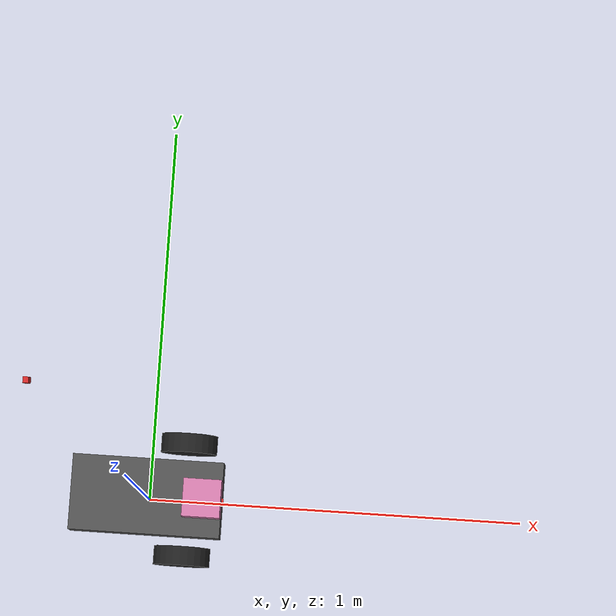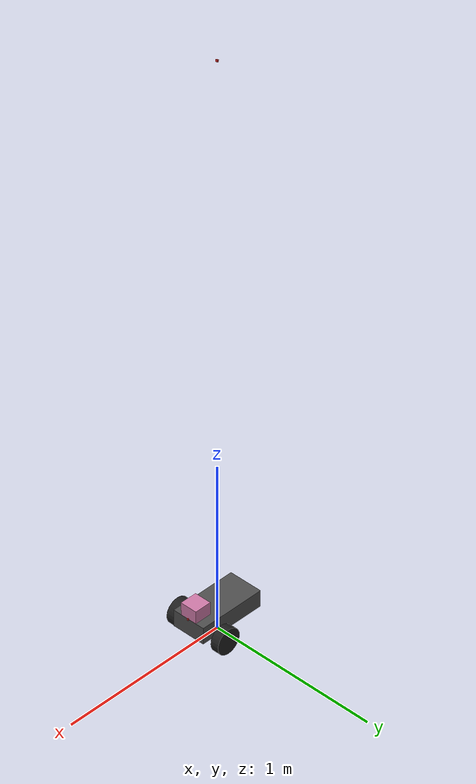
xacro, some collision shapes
<?xml version="1.0"?>
<robot xmlns:xacro="http://www.ros.org/wiki/xacro" name="ABot">

  <link name="base_link">
  <inertial>
    <origin xyz="0 0 0.125" />
    <mass value="5" />
    <inertia  ixx="0.1" ixy="0.0"  ixz="0.0"  iyy="0.1"  iyz="0.0"  izz="0.1" />
  </inertial>
  <visual>
    <origin xyz="0 0 0.125"/>
    <geometry>
      <box size="0.4 0.2 0.1" />
    </geometry>
  </visual>
  <collision>
    <origin xyz="0 0 0.125"/>
    <geometry>
      <box size="0.4 0.2 0.1" />
    </geometry>
  </collision>
  </link>
  <gazebo reference="base_link">
    <material>Gazebo/DarkGrey</material>
  </gazebo>

  <link name="right_wheel">
  <inertial>
    <origin rpy="1.5707963267948966 0 0" xyz="0 0 0" />
    <mass value="0.1" />
    <inertia  ixx="0.01" ixy="0.0"  ixz="0.0"  iyy="0.01"  iyz="0.0"  izz="0.01" />
  </inertial>
  <visual>
    <origin rpy="1.5707963267948966 0 0" xyz="0 0 0"/>
    <geometry>
      <cylinder length="0.05" radius="0.075"/>
    </geometry>
  </visual>
  <collision>
    <origin rpy="1.5707963267948966 0 0" xyz="0 0 0"/>
    <geometry>
      <cylinder length="0.05" radius="0.075"/>
    </geometry>
  </collision>
  </link>

  <gazebo reference="right_wheel">
    <material>Gazebo/Black</material>
  </gazebo>

  <joint name="base_link_right_wheel" type="continuous">
    <parent link="base_link"/>
    <child link="right_wheel"/>
    <axis xyz="0 1 0"/>
    <origin xyz="0.1 -0.15 0.075"/>
  </joint>

  <transmission name="T_base_link_right_wheel">
    <type>transmission_interface/SimpleTransmission</type>
    <actuator name="motor_1">
      <mechanicalReduction>1</mechanicalReduction>
      <hardwareInterface>hardware_interface/VelocityJointInterface</hardwareInterface>
    </actuator>
    <joint name="base_link_right_wheel">
      <hardwareInterface>hardware_interface/VelocityJointInterface</hardwareInterface>
    </joint>
  </transmission>

  <link name="left_wheel">
  <inertial>
    <origin rpy="1.5707963267948966 0 0" xyz="0 0 0" />
    <mass value="0.1" />
    <inertia  ixx="0.01" ixy="0.0"  ixz="0.0"  iyy="0.01"  iyz="0.0"  izz="0.01" />
  </inertial>
  <visual>
    <origin rpy="1.5707963267948966 0 0" xyz="0 0 0"/>
    <geometry>
      <cylinder length="0.05" radius="0.075"/>
    </geometry>
  </visual>
  <collision>
    <origin rpy="1.5707963267948966 0 0" xyz="0 0 0"/>
    <geometry>
      <cylinder length="0.05" radius="0.075"/>
    </geometry>
  </collision>
  </link>

  <gazebo reference="left_wheel">
    <material>Gazebo/Black</material>
  </gazebo>

  <joint name="base_link_left_wheel" type="continuous">
    <parent link="base_link"/>
    <child link="left_wheel"/>
    <axis xyz="0 1 0"/>
    <origin xyz="0.1 0.15 0.075"/>
  </joint>

  <transmission name="T_base_link_left_wheel">
    <type>transmission_interface/SimpleTransmission</type>
    <actuator name="motor_2">
      <mechanicalReduction>1</mechanicalReduction>
      <hardwareInterface>hardware_interface/VelocityJointInterface</hardwareInterface>
    </actuator>
    <joint name="base_link_left_wheel">
      <hardwareInterface>hardware_interface/VelocityJointInterface</hardwareInterface>
    </joint>
  </transmission>

  <link name="back_wheel">
  <inertial>
    <origin rpy="1.5707963267948966 0 0" xyz="0 0 0" />
    <mass value="0.1" />
    <inertia  ixx="0.01" ixy="0.0"  ixz="0.0"  iyy="0.01"  iyz="0.0"  izz="0.01" />
  </inertial>
  <visual>
    <origin rpy="1.5707963267948966 0 0" xyz="0 0 0"/>
    <geometry>
      <sphere length="0.1" radius="0.025"/>
    </geometry>
  </visual>
  <collision>
    <origin rpy="1.5707963267948966 0 0" xyz="0 0 0"/>
    <geometry>
      <sphere length="0.1" radius="0.025"/>
    </geometry>
  </collision>
      <surface>
        <friction>
          <ode>
            <mu>0.000001</mu>
            <mu2>0.000001</mu2>
          </ode>
        </friction>
      </surface>
  </link>

   <joint name="base_link_back_wheel" type="fixed">
    <parent link="base_link"/>
    <child link="back_wheel"/>
    <axis xyz="0 1 1"/>
    <origin xyz="-0.15 0 0.025"/>
  </joint>

  <gazebo reference="back_wheel">
    <material>Gazebo/Black</material>
    <mu1>0.000001</mu1>
    <mu2>0.000001</mu2>
  </gazebo>

<link name="camera_link">
    <collision>
      <origin xyz="0 0 0" rpy="0 0 0"/>
      <geometry>
    <box size="0.01 0.01 0.01"/>
      </geometry>
    </collision>

    <visual>
      <origin xyz="0 0 0" rpy="0 0 0"/>
      <geometry>
    <box size="0.01 0.01 0.01"/>
      </geometry>
      <material name="red"/>
    </visual>

    <inertial>
      <mass value="1e-5" />
      <origin xyz="0 0 0" rpy="0 0 0"/>
      <inertia ixx="1e-6" ixy="0" ixz="0" iyy="1e-6" iyz="0" izz="1e-6" />
    </inertial>
  </link>

<gazebo reference="camera_link">
    <material>Gazebo/Black</material>
    <mu1>0.000001</mu1>
    <mu2>0.000001</mu2>
  </gazebo>

<link name="camera_link_2">
    <collision>
      <origin xyz="0 0 0" rpy="0 0 0"/>
      <geometry>
    <box size="0.01 0.01 0.01"/>
      </geometry>
    </collision>

    <visual>
      <origin xyz="0 0 0" rpy="0 0 0"/>
      <geometry>
    <box size="0.01 0.01 0.01"/>
      </geometry>
      <material name="red"/>
    </visual>

    <inertial>
      <mass value="1e-5" />
      <origin xyz="0 0 0" rpy="0 0 0"/>
      <inertia ixx="1e-6" ixy="0" ixz="0" iyy="1e-6" iyz="0" izz="1e-6" />
    </inertial>
  </link>

<joint name="hokuyo_joint" type="fixed">
    <axis xyz="0 1 0" />
    <origin xyz="0.15 0 0.2" rpy="0 0 0"/>
    <parent link="base_link"/>
    <child link="hokuyo_link"/>
  </joint>

  <!-- Hokuyo Laser -->
  <link name="hokuyo_link">
    <collision>
      <origin xyz="0 0 0" rpy="0 0 0"/>
      <geometry>
    <box size="0.1 0.1 0.1"/>
      </geometry>
    </collision>

    <visual>
      <origin xyz="0 0 0" rpy="0 0 0"/>
      <geometry>
        <mesh filename="package://gazebo_demo/urdf/hokuyo.dae"/>
      </geometry>
    </visual>

    <inertial>
      <mass value="1e-5" />
      <origin xyz="0 0 0" rpy="0 0 0"/>
      <inertia ixx="1e-6" ixy="0" ixz="0" iyy="1e-6" iyz="0" izz="1e-6" />
    </inertial>
  </link>

<joint name="camera_joint" type="fixed">
    <axis xyz="0 0 0" />
    <origin xyz="0.2 0 0.175" rpy="0 0 0"/>
    <parent link="base_link"/>
    <child link="camera_link"/>
  </joint>

<joint name="camera_joint_2" type="fixed">
    <axis xyz="0 0 0" />
    <origin xyz="0 0 3.3" rpy="0 1.25 0"/>
    <parent link="base_link"/>
    <child link="camera_link_2"/>
  </joint>

<gazebo reference="camera_link">
    <sensor type="camera" name="camera">
      <update_rate>30.0</update_rate>
      <camera name="head">
        <horizontal_fov>1.3962634</horizontal_fov>
        <image>
          <width>640</width>
          <height>480</height>
          <format>R8G8B8</format>
        </image>
        <clip>
          <near>0.02</near>
          <far>300</far>
        </clip>
        <noise>
          <type>gaussian</type>
          <!-- Noise is sampled independently per pixel on each frame.
               That pixel's noise value is added to each of its color
               channels, which at that point lie in the range [0,1]. -->
          <mean>0.0</mean>
          <stddev>0.007</stddev>
        </noise>
      </camera>
      <plugin name="camera_controller" filename="libgazebo_ros_camera.so">
        <alwaysOn>true</alwaysOn>
        <updateRate>30.0</updateRate>
        <cameraName>/camera</cameraName>
        <imageTopicName>image_raw</imageTopicName>
        <cameraInfoTopicName>camera_info</cameraInfoTopicName>
        <frameName>camera_link</frameName>
        <hackBaseline>0.07</hackBaseline>
        <distortionK1>0.0</distortionK1>
        <distortionK2>0.0</distortionK2>
        <distortionK3>0.0</distortionK3>
        <distortionT1>0.0</distortionT1>
        <distortionT2>0.0</distortionT2>
      </plugin>
    </sensor>
  </gazebo>

<gazebo reference="camera_link_2">
    <sensor type="camera" name="camera_top">
      <update_rate>30.0</update_rate>
      <camera name="head_2">
        <horizontal_fov>1.3962634</horizontal_fov>
        <image>
          <width>640</width>
          <height>480</height>
          <format>R8G8B8</format>
        </image>
        <clip>
          <near>0.02</near>
          <far>300</far>
        </clip>
        <noise>
          <type>gaussian</type>
          <!-- Noise is sampled independently per pixel on each frame.
               That pixel's noise value is added to each of its color
               channels, which at that point lie in the range [0,1]. -->
          <mean>0.0</mean>
          <stddev>0.007</stddev>
        </noise>
      </camera>
      <plugin name="camera_controller" filename="libgazebo_ros_camera.so">
        <alwaysOn>true</alwaysOn>
        <updateRate>30.0</updateRate>
        <cameraName>/camera_up</cameraName>
        <imageTopicName>image_raw_up</imageTopicName>
        <cameraInfoTopicName>camera_info_up</cameraInfoTopicName>
        <frameName>camera_link_2</frameName>
        <hackBaseline>0.07</hackBaseline>
        <distortionK1>0.0</distortionK1>
        <distortionK2>0.0</distortionK2>
        <distortionK3>0.0</distortionK3>
        <distortionT1>0.0</distortionT1>
        <distortionT2>0.0</distortionT2>
      </plugin>
    </sensor>
  </gazebo>

<gazebo>
  <plugin name="differential_drive_controller" filename="libgazebo_ros_diff_drive.so">
    <alwaysOn>true</alwaysOn>
    <updateRate>10</updateRate>
    <leftJoint>base_link_left_wheel</leftJoint>
    <rightJoint>base_link_right_wheel</rightJoint>
    <wheelSeparation>0.35</wheelSeparation>
    <wheelDiameter>0.15</wheelDiameter>
    <torque>1.41</torque>
    <commandTopic>cmd_vel</commandTopic>
    <odometryTopic>odom</odometryTopic>
    <odometryFrame>odom</odometryFrame>
    <robotBaseFrame>base_link</robotBaseFrame>
    <publishWheelJointState>true</publishWheelJointState>
    <enable_odom_tf>false</enable_odom_tf>
  </plugin>
</gazebo>

 <gazebo reference="hokuyo_link">
    <sensor type="gpu_ray" name="head_hokuyo_sensor">
      <pose>0 0 0 0 0 0</pose>
      <visualize>false</visualize>
      <update_rate>10</update_rate>
      <ray>
        <scan>
          <horizontal>
            <samples>720</samples>
            <resolution>1</resolution>
            <min_angle>-1.570796</min_angle>
            <max_angle>1.570796</max_angle>
          </horizontal>
        </scan>
        <range>
          <min>0.10</min>
          <max>20.0</max>
          <resolution>0.01</resolution>
        </range>
        <noise>
          <type>gaussian</type>
          <mean>0.0</mean>
          <stddev>0.01</stddev>
        </noise>

      </ray>
      <plugin name="gazebo_ros_head_hokuyo_controller" filename="libgazebo_ros_gpu_laser.so">
        <topicName>scan</topicName>
        <frameName>hokuyo_link</frameName>
      </plugin>
    </sensor>
  </gazebo>

  <xacro:property name="hokuyo_link" value="0.05" />

  <xacro:property name="camera_link" value="0.05" />

  <xacro:property name="camera_link_2" value="0.05" />

</robot>
